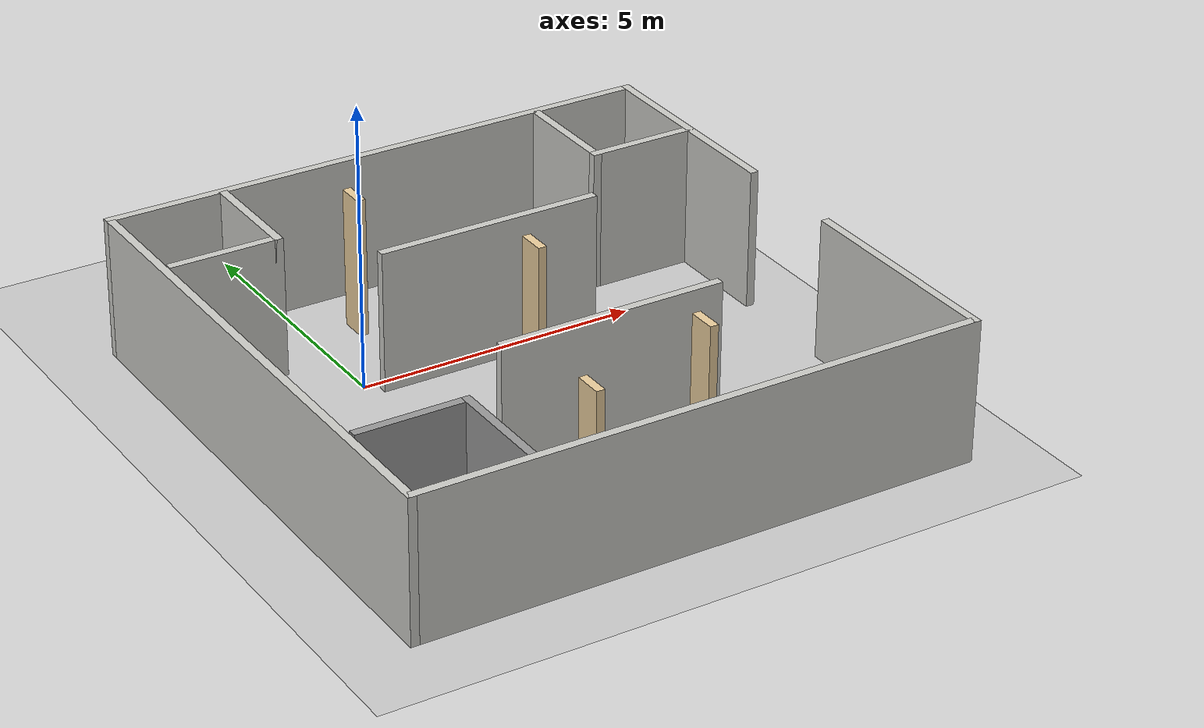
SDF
<sdf version="1.6">
 <world name="default">
  <light name="sun" type="directional">
   <pose>0 0 10 0 -0 0</pose>
   <diffuse>0.8 0.8 0.8 1</diffuse>
   <specular>0.1 0.1 0.1 1</specular>
   <attenuation>
    <range>1000</range>
    <constant>0.9</constant>
    <linear>0.01</linear>
    <quadratic>0.001</quadratic>
   </attenuation>
   <direction>-0.5 0.5 -1</direction>
  </light>
  <model name="ground_plane">
   <static>1</static>
   <link name="link">
    <collision name="collision">
     <geometry><plane><normal>0 0 1</normal><size>100 100</size></plane></geometry>
     <surface><friction><ode><mu>100</mu><mu2>50</mu2></ode></friction></surface>
    </collision>
    <visual name="visual">
     <cast_shadows>0</cast_shadows>
     <geometry><plane><normal>0 0 1</normal><size>100 100</size></plane></geometry>
     <material>
      <script><uri>file://media/materials/scripts/gazebo.material</uri><name>Gazebo/Grey</name></script>
     </material>
    </visual>
   </link>
  </model>
  <gravity>0 0 -9.8</gravity>
  <magnetic_field>6e-06 2.3e-05 -4.2e-05</magnetic_field>
  <atmosphere type="adiabatic"/>
  <physics name="default_physics" default="0" type="ode">
   <max_step_size>0.001</max_step_size>
   <real_time_factor>1</real_time_factor>
   <real_time_update_rate>1000</real_time_update_rate>
  </physics>
  <scene><ambient>0.4 0.4 0.4 1</ambient><background>0.7 0.7 0.7 1</background><shadows>1</shadows></scene>
  <spherical_coordinates>
   <surface_model>EARTH_WGS84</surface_model>
   <latitude_deg>0</latitude_deg>
   <longitude_deg>0</longitude_deg>
   <elevation>0</elevation>
   <heading_deg>0</heading_deg>
  </spherical_coordinates>
  <model name="superS1">
   <pose>1.98236 -1.90417 0 0 -0 0</pose>
   <link name="Wall_0">
    <collision name="Wall_0_Collision">
     <geometry><box><size>10 0.15 2.5</size></box></geometry>
     <pose>0 0 1.25 0 -0 0</pose>
    </collision>
    <visual name="Wall_0_Visual">
     <pose>0 0 1.25 0 -0 0</pose>
     <geometry><box><size>10 0.15 2.5</size></box></geometry>
     <material>
      <script><uri>file://media/materials/scripts/gazebo.material</uri><name>Gazebo/CeilingTiled</name></script>
      <ambient>1 1 1 1</ambient>
     </material>
    </visual>
    <pose>0 -4.925 0 0 -0 3.14159</pose>
   </link>
   <link name="Wall_11">
    <collision name="Wall_11_Collision">
     <geometry><box><size>4 0.15 2.5</size></box></geometry>
     <pose>0 0 1.25 0 -0 0</pose>
    </collision>
    <visual name="Wall_11_Visual">
     <pose>0 0 1.25 0 -0 0</pose>
     <geometry><box><size>4 0.15 2.5</size></box></geometry>
     <material>
      <script><uri>file://media/materials/scripts/gazebo.material</uri><name>Gazebo/CeilingTiled</name></script>
      <ambient>1 1 1 1</ambient>
     </material>
    </visual>
    <pose>4.925 3 0 0 0 -1.5708</pose>
   </link>
   <link name="Wall_13">
    <collision name="Wall_13_Collision">
     <geometry><box><size>2 0.15 2.5</size></box></geometry>
     <pose>0 0 1.25 0 -0 0</pose>
    </collision>
    <visual name="Wall_13_Visual">
     <pose>0 0 1.25 0 -0 0</pose>
     <geometry><box><size>2 0.15 2.5</size></box></geometry>
     <material>
      <script><uri>file://media/materials/scripts/gazebo.material</uri><name>Gazebo/Grey</name></script>
      <ambient>1 1 1 1</ambient>
     </material>
    </visual>
    <pose>-2.88758 -3.95165 0 0 -0 1.5708</pose>
   </link>
   <link name="Wall_14">
    <collision name="Wall_14_Collision">
     <geometry><box><size>2 0.15 2.5</size></box></geometry>
     <pose>0 0 1.25 0 -0 0</pose>
    </collision>
    <visual name="Wall_14_Visual">
     <pose>0 0 1.25 0 -0 0</pose>
     <geometry><box><size>2 0.15 2.5</size></box></geometry>
     <material>
      <script><uri>file://media/materials/scripts/gazebo.material</uri><name>Gazebo/Grey</name></script>
      <ambient>1 1 1 1</ambient>
     </material>
    </visual>
    <pose>-3.81258 -3.02665 0 0 -0 3.14159</pose>
   </link>
   <link name="Wall_16">
    <collision name="Wall_16_Collision">
     <geometry><box><size>2 0.15 2.5</size></box></geometry>
     <pose>0 0 1.25 0 -0 0</pose>
    </collision>
    <visual name="Wall_16_Visual">
     <pose>0 0 1.25 0 -0 0</pose>
     <geometry><box><size>2 0.15 2.5</size></box></geometry>
     <material>
      <script><uri>file://media/materials/scripts/gazebo.material</uri><name>Gazebo/CeilingTiled</name></script>
      <ambient>1 1 1 1</ambient>
     </material>
    </visual>
    <pose>-2.91058 3.90435 0 0 0 -1.5708</pose>
   </link>
   <link name="Wall_17">
    <collision name="Wall_17_Collision">
     <geometry><box><size>2 0.15 2.5</size></box></geometry>
     <pose>0 0 1.25 0 -0 0</pose>
    </collision>
    <visual name="Wall_17_Visual">
     <pose>0 0 1.25 0 -0 0</pose>
     <geometry><box><size>2 0.15 2.5</size></box></geometry>
     <material>
      <script><uri>file://media/materials/scripts/gazebo.material</uri><name>Gazebo/CeilingTiled</name></script>
      <ambient>1 1 1 1</ambient>
     </material>
    </visual>
    <pose>-3.83558 2.97935 0 0 -0 3.14159</pose>
   </link>
   <link name="Wall_19">
    <collision name="Wall_19_Collision">
     <geometry><box><size>4 0.15 2.5</size></box></geometry>
     <pose>0 0 1.25 0 -0 0</pose>
    </collision>
    <visual name="Wall_19_Visual">
     <pose>0 0 1.25 0 -0 0</pose>
     <geometry><box><size>4 0.15 2.5</size></box></geometry>
     <material>
      <script><uri>file://media/materials/scripts/gazebo.material</uri><name>Gazebo/CeilingTiled</name></script>
      <ambient>0.760784 0.662745 0.627451 1</ambient>
     </material>
    </visual>
    <pose>0.325424 -1.86365 0 0 -0 0</pose>
   </link>
   <link name="Wall_21">
    <collision name="Wall_21_Collision">
     <geometry><box><size>4 0.15 2.5</size></box></geometry>
     <pose>0 0 1.25 0 -0 0</pose>
    </collision>
    <visual name="Wall_21_Visual">
     <pose>0 0 1.25 0 -0 0</pose>
     <geometry><box><size>4 0.15 2.5</size></box></geometry>
     <material>
      <script><uri>file://media/materials/scripts/gazebo.material</uri><name>Gazebo/CeilingTiled</name></script>
      <ambient>1 1 1 1</ambient>
     </material>
    </visual>
    <pose>0.233424 1.67835 0 0 -0 0</pose>
   </link>
   <link name="Wall_34">
    <collision name="Wall_34_Collision">
     <geometry><box><size>2 0.15 2.5</size></box></geometry>
     <pose>0 0 1.25 0 -0 0</pose>
    </collision>
    <visual name="Wall_34_Visual">
     <pose>0 0 1.25 0 -0 0</pose>
     <geometry><box><size>2 0.15 2.5</size></box></geometry>
     <material>
      <script><uri>file://media/materials/scripts/gazebo.material</uri><name>Gazebo/CeilingTiled</name></script>
      <ambient>1 1 1 1</ambient>
     </material>
    </visual>
    <pose>3.98249 2.97067 0 0 -0 3.14159</pose>
   </link>
   <link name="Wall_35">
    <collision name="Wall_35_Collision">
     <geometry><box><size>2 0.15 2.5</size></box></geometry>
     <pose>0 0 1.25 0 -0 0</pose>
    </collision>
    <visual name="Wall_35_Visual">
     <pose>0 0 1.25 0 -0 0</pose>
     <geometry><box><size>2 0.15 2.5</size></box></geometry>
     <material>
      <script><uri>file://media/materials/scripts/gazebo.material</uri><name>Gazebo/CeilingTiled</name></script>
      <ambient>1 1 1 1</ambient>
     </material>
    </visual>
    <pose>3.05749 3.89567 0 0 -0 1.5708</pose>
   </link>
   <link name="Wall_37">
    <collision name="Wall_37_Collision">
     <geometry><box><size>0.5 0.15 2.5</size></box></geometry>
     <pose>0 0 1.25 0 -0 0</pose>
    </collision>
    <visual name="Wall_37_Visual">
     <pose>0 0 1.25 0 -0 0</pose>
     <geometry><box><size>0.5 0.15 2.5</size></box></geometry>
     <material>
      <script><uri>file://media/materials/scripts/gazebo.material</uri><name>Gazebo/Grey</name></script>
      <ambient>0.921569 0.807843 0.615686 1</ambient>
     </material>
    </visual>
    <pose>-1.09666 -3.57878 0 0 0 -1.5708</pose>
   </link>
   <link name="Wall_39">
    <collision name="Wall_39_Collision">
     <geometry><box><size>0.5 0.15 2.5</size></box></geometry>
     <pose>0 0 1.25 0 -0 0</pose>
    </collision>
    <visual name="Wall_39_Visual">
     <pose>0 0 1.25 0 -0 0</pose>
     <geometry><box><size>0.5 0.15 2.5</size></box></geometry>
     <material>
      <script><uri>file://media/materials/scripts/gazebo.material</uri><name>Gazebo/Grey</name></script>
      <ambient>0.921569 0.807843 0.615686 1</ambient>
     </material>
    </visual>
    <pose>1.42864 -2.79693 0 0 0 -1.5708</pose>
   </link>
   <link name="Wall_41">
    <collision name="Wall_41_Collision">
     <geometry><box><size>0.5 0.15 2.5</size></box></geometry>
     <pose>0 0 1.25 0 -0 0</pose>
    </collision>
    <visual name="Wall_41_Visual">
     <pose>0 0 1.25 0 -0 0</pose>
     <geometry><box><size>0.5 0.15 2.5</size></box></geometry>
     <material>
      <script><uri>file://media/materials/scripts/gazebo.material</uri><name>Gazebo/Grey</name></script>
      <ambient>0.921569 0.807843 0.615686 1</ambient>
     </material>
    </visual>
    <pose>-1.13444 3.69237 0 0 0 -1.5708</pose>
   </link>
   <link name="Wall_43">
    <collision name="Wall_43_Collision">
     <geometry><box><size>0.5 0.15 2.5</size></box></geometry>
     <pose>0 0 1.25 0 -0 0</pose>
    </collision>
    <visual name="Wall_43_Visual">
     <pose>0 0 1.25 0 -0 0</pose>
     <geometry><box><size>0.5 0.15 2.5</size></box></geometry>
     <material>
      <script><uri>file://media/materials/scripts/gazebo.material</uri><name>Gazebo/Grey</name></script>
      <ambient>0.921569 0.807843 0.615686 1</ambient>
     </material>
    </visual>
    <pose>0.531915 0.756423 0 0 0 -1.5708</pose>
   </link>
   <link name="Wall_5">
    <collision name="Wall_5_Collision">
     <geometry><box><size>10 0.15 2.5</size></box></geometry>
     <pose>0 0 1.25 0 -0 0</pose>
    </collision>
    <visual name="Wall_5_Visual">
     <pose>0 0 1.25 0 -0 0</pose>
     <geometry><box><size>10 0.15 2.5</size></box></geometry>
     <material>
      <script><uri>file://media/materials/scripts/gazebo.material</uri><name>Gazebo/CeilingTiled</name></script>
      <ambient>1 1 1 1</ambient>
     </material>
    </visual>
    <pose>0 4.925 0 0 -0 3.14159</pose>
   </link>
   <link name="Wall_7">
    <collision name="Wall_7_Collision">
     <geometry><box><size>10 0.15 2.5</size></box></geometry>
     <pose>0 0 1.25 0 -0 0</pose>
    </collision>
    <visual name="Wall_7_Visual">
     <pose>0 0 1.25 0 -0 0</pose>
     <geometry><box><size>10 0.15 2.5</size></box></geometry>
     <material>
      <script><uri>file://media/materials/scripts/gazebo.material</uri><name>Gazebo/CeilingTiled</name></script>
      <ambient>1 1 1 1</ambient>
     </material>
    </visual>
    <pose>-4.925 0 0 0 0 -1.5708</pose>
   </link>
   <link name="Wall_9">
    <collision name="Wall_9_Collision">
     <geometry><box><size>4 0.15 2.5</size></box></geometry>
     <pose>0 0 1.25 0 -0 0</pose>
    </collision>
    <visual name="Wall_9_Visual">
     <pose>0 0 1.25 0 -0 0</pose>
     <geometry><box><size>4 0.15 2.5</size></box></geometry>
     <material>
      <script><uri>file://media/materials/scripts/gazebo.material</uri><name>Gazebo/CeilingTiled</name></script>
      <ambient>1 1 1 1</ambient>
     </material>
    </visual>
    <pose>4.925 -3 0 0 -0 1.5708</pose>
   </link>
   <static>1</static>
  </model>
  <model name="BlueBall_0">
   <link name="link_0">
    <pose>-0.337778 0 -0 0 -0 0</pose>
    <inertial>
     <mass>1</mass>
     <inertia>
      <ixx>0.166667</ixx>
      <ixy>0</ixy>
      <ixz>0</ixz>
      <iyy>0.166667</iyy>
      <iyz>0</iyz>
      <izz>0.166667</izz>
     </inertia>
    </inertial>
    <visual name="visual">
     <geometry><sphere><radius>0.152</radius></sphere></geometry>
     <material>
      <lighting>1</lighting>
      <script><uri>file://media/materials/scripts/gazebo.material</uri><name>Gazebo/Blue</name></script>
      <shader type="pixel"><normal_map>__default__</normal_map></shader>
      <ambient>0 0 0.6 0.5</ambient>
      <diffuse>0.7 0.7 0.7 1</diffuse>
      <specular>0.01 0.01 0.01 1</specular>
      <emissive>0 0 0 1</emissive>
     </material>
    </visual>
    <collision name="collision">
     <geometry><sphere><radius>0.15</radius></sphere></geometry>
     <surface>
      <friction>
       <ode><mu>1</mu><mu2>1</mu2><fdir1>0 0 0</fdir1><slip1>0</slip1><slip2>0</slip2></ode>
       <torsional>
        <coefficient>1</coefficient>
        <patch_radius>0</patch_radius>
        <surface_radius>0</surface_radius>
        <use_patch_radius>1</use_patch_radius>
        <ode><slip>0</slip></ode>
       </torsional>
      </friction>
      <bounce><restitution_coefficient>0</restitution_coefficient><threshold>1e+06</threshold></bounce>
      <contact>
       <collide_without_contact>0</collide_without_contact>
       <collide_without_contact_bitmask>1</collide_without_contact_bitmask>
       <collide_bitmask>1</collide_bitmask>
       <ode>
        <soft_cfm>0</soft_cfm>
        <soft_erp>0.2</soft_erp>
        <kp>1e+13</kp>
        <kd>1</kd>
        <max_vel>0.01</max_vel>
        <min_depth>0</min_depth>
       </ode>
       <bullet>
        <split_impulse>1</split_impulse>
        <split_impulse_penetration_threshold>-0.01</split_impulse_penetration_threshold>
        <soft_cfm>0</soft_cfm>
        <soft_erp>0.2</soft_erp>
        <kp>1e+13</kp>
        <kd>1</kd>
       </bullet>
      </contact>
     </surface>
    </collision>
   </link>
   <static>0</static>
   <pose>-0.340323 -5.89247 0.145147 0 0.014368 -3e-06</pose>
  </model>
  <model name="RedBall">
   <link name="link_1">
    <pose>-0.428027 0.129489 0.017823 0 -0 0</pose>
    <inertial>
     <mass>1</mass>
     <inertia><ixx>0.1</ixx><ixy>0</ixy><ixz>0</ixz><iyy>0.1</iyy><iyz>0</iyz><izz>0.1</izz></inertia>
    </inertial>
    <visual name="visual">
     <geometry><sphere><radius>0.15</radius></sphere></geometry>
     <material>
      <lighting>1</lighting>
      <script><uri>file://media/materials/scripts/gazebo.material</uri><name>Gazebo/Red</name></script>
      <shader type="pixel"><normal_map>__default__</normal_map></shader>
      <ambient>0.6 0 0 1</ambient>
      <diffuse>0.7 0.7 0.7 1</diffuse>
      <specular>0.01 0.01 0.01 1</specular>
      <emissive>0 0 0 1</emissive>
     </material>
    </visual>
    <collision name="collision">
     <geometry><sphere><radius>0.15</radius></sphere></geometry>
     <surface>
      <friction>
       <ode><mu>1</mu><mu2>1</mu2><fdir1>0 0 0</fdir1><slip1>0</slip1><slip2>0</slip2></ode>
       <torsional>
        <coefficient>1</coefficient>
        <patch_radius>0</patch_radius>
        <surface_radius>0</surface_radius>
        <use_patch_radius>1</use_patch_radius>
        <ode><slip>0</slip></ode>
       </torsional>
      </friction>
      <bounce><restitution_coefficient>0</restitution_coefficient><threshold>1e+06</threshold></bounce>
      <contact>
       <collide_without_contact>0</collide_without_contact>
       <collide_without_contact_bitmask>1</collide_without_contact_bitmask>
       <collide_bitmask>1</collide_bitmask>
       <ode>
        <soft_cfm>0</soft_cfm>
        <soft_erp>0.2</soft_erp>
        <kp>1e+13</kp>
        <kd>1</kd>
        <max_vel>0.01</max_vel>
        <min_depth>0</min_depth>
       </ode>
       <bullet>
        <split_impulse>1</split_impulse>
        <split_impulse_penetration_threshold>-0.01</split_impulse_penetration_threshold>
        <soft_cfm>0</soft_cfm>
        <soft_erp>0.2</soft_erp>
        <kp>1e+13</kp>
        <kd>1</kd>
       </bullet>
      </contact>
     </surface>
    </collision>
   </link>
   <static>0</static>
   <pose>-0.247514 2.09742 0.11337 -4e-06 0.043995 -0</pose>
  </model>
 </world>
</sdf>
